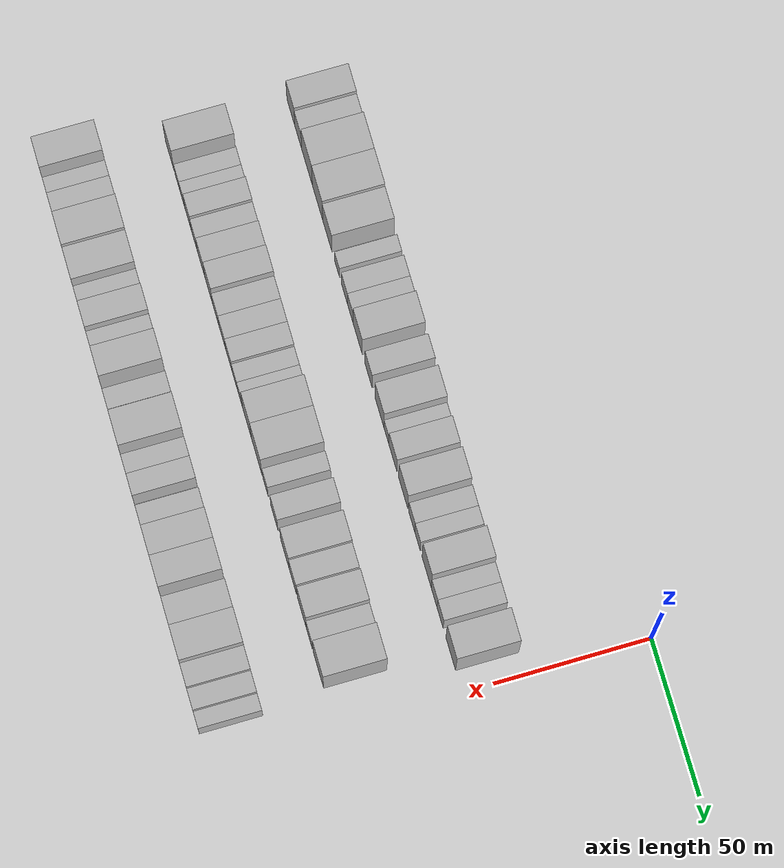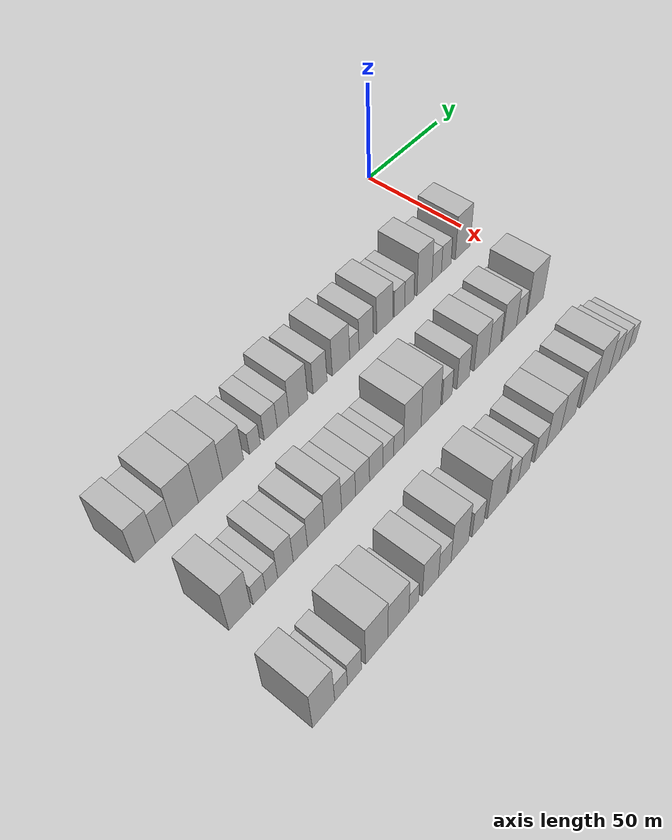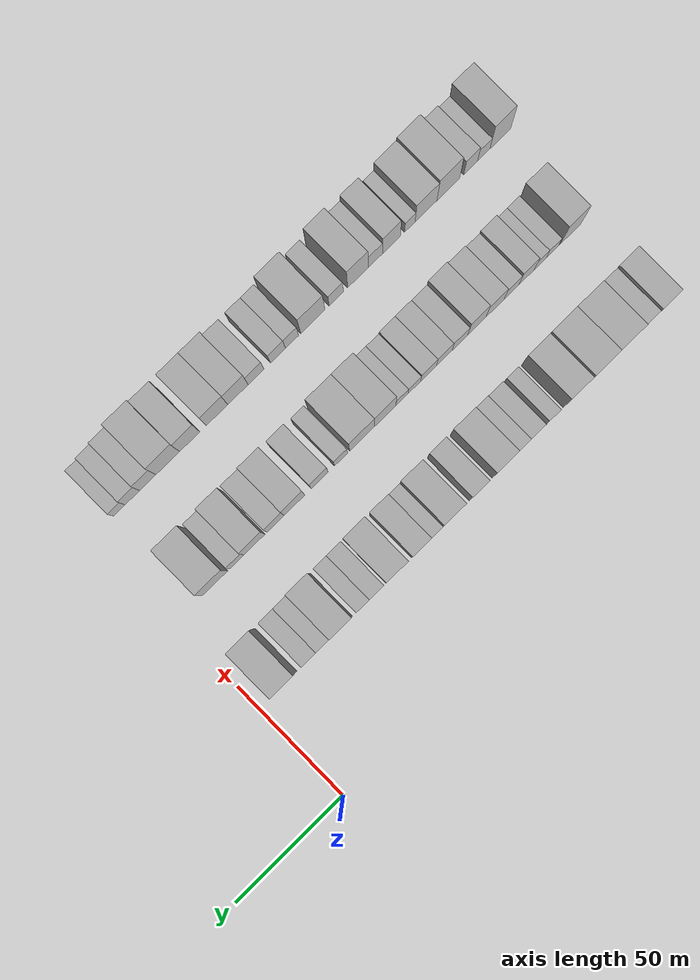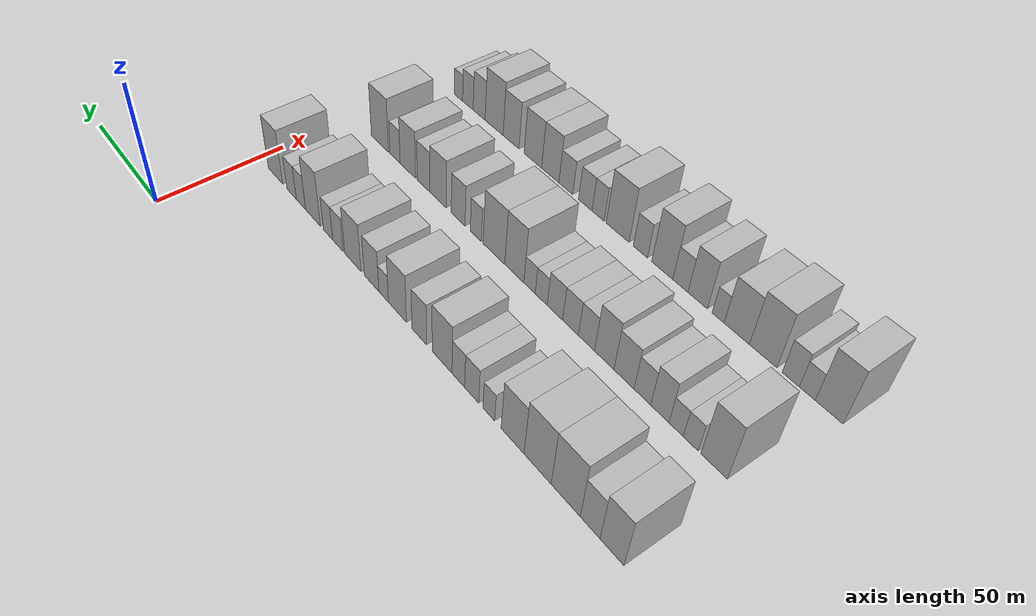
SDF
<sdf version="1.6">
 <world name="default">
  <model name="building_21">
   <static>1</static>
   <pose>50.0000 -189.6851 0 0.000000 0.000000 0.000000</pose>
   <link name="link">
    <pose>0 0 10.50 0 0 0</pose>
    <collision name="collision"><geometry><box><size>20.0000 9.1375 21.0000</size></box></geometry></collision>
    <visual name="visual">
     <cast_shadows>0</cast_shadows>
     <geometry><box><size>20.0000 9.1375 21.0000</size></box></geometry>
     <material>
      <script>
       <uri>model://HANNAS_wall/materials/scripts</uri>
       <uri>model://HANNAS_wall/materials/textures</uri>
       <name>vrc/HANNAS_wall</name>
      </script>
     </material>
    </visual>
   </link>
  </model>
  <model name="building_22">
   <static>1</static>
   <pose>50.0000 -181.2218 0 0.000000 0.000000 0.000000</pose>
   <link name="link">
    <pose>0 0 9.00 0 0 0</pose>
    <collision name="collision"><geometry><box><size>20.0000 7.7893 18.0000</size></box></geometry></collision>
    <visual name="visual">
     <cast_shadows>0</cast_shadows>
     <geometry><box><size>20.0000 7.7893 18.0000</size></box></geometry>
     <material>
      <script>
       <uri>model://HANNAS_wall/materials/scripts</uri>
       <uri>model://HANNAS_wall/materials/textures</uri>
       <name>vrc/HANNAS_wall</name>
      </script>
     </material>
    </visual>
   </link>
  </model>
  <model name="building_23">
   <static>1</static>
   <pose>50.0000 -171.3598 0 0.000000 0.000000 0.000000</pose>
   <link name="link">
    <pose>0 0 12.00 0 0 0</pose>
    <collision name="collision"><geometry><box><size>20.0000 11.9347 24.0000</size></box></geometry></collision>
    <visual name="visual">
     <cast_shadows>0</cast_shadows>
     <geometry><box><size>20.0000 11.9347 24.0000</size></box></geometry>
     <material>
      <script>
       <uri>model://HANNAS_wall/materials/scripts</uri>
       <uri>model://HANNAS_wall/materials/textures</uri>
       <name>vrc/HANNAS_wall</name>
      </script>
     </material>
    </visual>
   </link>
  </model>
  <model name="building_24">
   <static>1</static>
   <pose>50.0000 -159.5305 0 0.000000 0.000000 0.000000</pose>
   <link name="link">
    <pose>0 0 12.00 0 0 0</pose>
    <collision name="collision"><geometry><box><size>20.0000 11.7240 24.0000</size></box></geometry></collision>
    <visual name="visual">
     <cast_shadows>0</cast_shadows>
     <geometry><box><size>20.0000 11.7240 24.0000</size></box></geometry>
     <material>
      <script>
       <uri>model://HANNAS_wall/materials/scripts</uri>
       <uri>model://HANNAS_wall/materials/textures</uri>
       <name>vrc/HANNAS_wall</name>
      </script>
     </material>
    </visual>
   </link>
  </model>
  <model name="building_25">
   <static>1</static>
   <pose>50.0000 -148.4868 0 0.000000 0.000000 0.000000</pose>
   <link name="link">
    <pose>0 0 10.50 0 0 0</pose>
    <collision name="collision"><geometry><box><size>20.0000 10.3634 21.0000</size></box></geometry></collision>
    <visual name="visual">
     <cast_shadows>0</cast_shadows>
     <geometry><box><size>20.0000 10.3634 21.0000</size></box></geometry>
     <material>
      <script>
       <uri>model://HANNAS_wall/materials/scripts</uri>
       <uri>model://HANNAS_wall/materials/textures</uri>
       <name>vrc/HANNAS_wall</name>
      </script>
     </material>
    </visual>
   </link>
  </model>
  <model name="building_26">
   <static>1</static>
   <pose>50.0000 -137.5446 0 0.000000 0.000000 0.000000</pose>
   <link name="link">
    <pose>0 0 6.00 0 0 0</pose>
    <collision name="collision"><geometry><box><size>20.0000 5.5210 12.0000</size></box></geometry></collision>
    <visual name="visual">
     <cast_shadows>0</cast_shadows>
     <geometry><box><size>20.0000 5.5210 12.0000</size></box></geometry>
     <material>
      <script>
       <uri>model://HANNAS_wall/materials/scripts</uri>
       <uri>model://HANNAS_wall/materials/textures</uri>
       <name>vrc/HANNAS_wall</name>
      </script>
     </material>
    </visual>
   </link>
  </model>
  <model name="building_27">
   <static>1</static>
   <pose>50.0000 -129.3545 0 0.000000 0.000000 0.000000</pose>
   <link name="link">
    <pose>0 0 7.50 0 0 0</pose>
    <collision name="collision"><geometry><box><size>20.0000 6.8593 15.0000</size></box></geometry></collision>
    <visual name="visual">
     <cast_shadows>0</cast_shadows>
     <geometry><box><size>20.0000 6.8593 15.0000</size></box></geometry>
     <material>
      <script>
       <uri>model://HANNAS_wall/materials/scripts</uri>
       <uri>model://HANNAS_wall/materials/textures</uri>
       <name>vrc/HANNAS_wall</name>
      </script>
     </material>
    </visual>
   </link>
  </model>
  <model name="building_28">
   <static>1</static>
   <pose>50.0000 -122.7703 0 0.000000 0.000000 0.000000</pose>
   <link name="link">
    <pose>0 0 7.50 0 0 0</pose>
    <collision name="collision"><geometry><box><size>20.0000 6.3090 15.0000</size></box></geometry></collision>
    <visual name="visual">
     <cast_shadows>0</cast_shadows>
     <geometry><box><size>20.0000 6.3090 15.0000</size></box></geometry>
     <material>
      <script>
       <uri>model://HANNAS_wall/materials/scripts</uri>
       <uri>model://HANNAS_wall/materials/textures</uri>
       <name>vrc/HANNAS_wall</name>
      </script>
     </material>
    </visual>
   </link>
  </model>
  <model name="building_29">
   <static>1</static>
   <pose>50.0000 -114.5321 0 0.000000 0.000000 0.000000</pose>
   <link name="link">
    <pose>0 0 10.50 0 0 0</pose>
    <collision name="collision"><geometry><box><size>20.0000 10.1676 21.0000</size></box></geometry></collision>
    <visual name="visual">
     <cast_shadows>0</cast_shadows>
     <geometry><box><size>20.0000 10.1676 21.0000</size></box></geometry>
     <material>
      <script>
       <uri>model://HANNAS_wall/materials/scripts</uri>
       <uri>model://HANNAS_wall/materials/textures</uri>
       <name>vrc/HANNAS_wall</name>
      </script>
     </material>
    </visual>
   </link>
  </model>
  <model name="building_30">
   <static>1</static>
   <pose>50.0000 -102.5261 0 0.000000 0.000000 0.000000</pose>
   <link name="link">
    <pose>0 0 9.00 0 0 0</pose>
    <collision name="collision"><geometry><box><size>20.0000 7.8445 18.0000</size></box></geometry></collision>
    <visual name="visual">
     <cast_shadows>0</cast_shadows>
     <geometry><box><size>20.0000 7.8445 18.0000</size></box></geometry>
     <material>
      <script>
       <uri>model://HANNAS_wall/materials/scripts</uri>
       <uri>model://HANNAS_wall/materials/textures</uri>
       <name>vrc/HANNAS_wall</name>
      </script>
     </material>
    </visual>
   </link>
  </model>
  <model name="building_31">
   <static>1</static>
   <pose>50.0000 -90.5469 0 0.000000 0.000000 0.000000</pose>
   <link name="link">
    <pose>0 0 10.50 0 0 0</pose>
    <collision name="collision"><geometry><box><size>20.0000 10.1137 21.0000</size></box></geometry></collision>
    <visual name="visual">
     <cast_shadows>0</cast_shadows>
     <geometry><box><size>20.0000 10.1137 21.0000</size></box></geometry>
     <material>
      <script>
       <uri>model://HANNAS_wall/materials/scripts</uri>
       <uri>model://HANNAS_wall/materials/textures</uri>
       <name>vrc/HANNAS_wall</name>
      </script>
     </material>
    </visual>
   </link>
  </model>
  <model name="building_32">
   <static>1</static>
   <pose>50.0000 -82.7300 0 0.000000 0.000000 0.000000</pose>
   <link name="link">
    <pose>0 0 6.00 0 0 0</pose>
    <collision name="collision"><geometry><box><size>20.0000 5.5202 12.0000</size></box></geometry></collision>
    <visual name="visual">
     <cast_shadows>0</cast_shadows>
     <geometry><box><size>20.0000 5.5202 12.0000</size></box></geometry>
     <material>
      <script>
       <uri>model://HANNAS_wall/materials/scripts</uri>
       <uri>model://HANNAS_wall/materials/textures</uri>
       <name>vrc/HANNAS_wall</name>
      </script>
     </material>
    </visual>
   </link>
  </model>
  <model name="building_33">
   <static>1</static>
   <pose>50.0000 -75.6578 0 0.000000 0.000000 0.000000</pose>
   <link name="link">
    <pose>0 0 9.00 0 0 0</pose>
    <collision name="collision"><geometry><box><size>20.0000 8.6242 18.0000</size></box></geometry></collision>
    <visual name="visual">
     <cast_shadows>0</cast_shadows>
     <geometry><box><size>20.0000 8.6242 18.0000</size></box></geometry>
     <material>
      <script>
       <uri>model://HANNAS_wall/materials/scripts</uri>
       <uri>model://HANNAS_wall/materials/textures</uri>
       <name>vrc/HANNAS_wall</name>
      </script>
     </material>
    </visual>
   </link>
  </model>
  <model name="building_34">
   <static>1</static>
   <pose>50.0000 -64.3255 0 0.000000 0.000000 0.000000</pose>
   <link name="link">
    <pose>0 0 10.50 0 0 0</pose>
    <collision name="collision"><geometry><box><size>20.0000 10.0405 21.0000</size></box></geometry></collision>
    <visual name="visual">
     <cast_shadows>0</cast_shadows>
     <geometry><box><size>20.0000 10.0405 21.0000</size></box></geometry>
     <material>
      <script>
       <uri>model://HANNAS_wall/materials/scripts</uri>
       <uri>model://HANNAS_wall/materials/textures</uri>
       <name>vrc/HANNAS_wall</name>
      </script>
     </material>
    </visual>
   </link>
  </model>
  <model name="building_35">
   <static>1</static>
   <pose>50.0000 -54.9833 0 0.000000 0.000000 0.000000</pose>
   <link name="link">
    <pose>0 0 7.50 0 0 0</pose>
    <collision name="collision"><geometry><box><size>20.0000 6.6439 15.0000</size></box></geometry></collision>
    <visual name="visual">
     <cast_shadows>0</cast_shadows>
     <geometry><box><size>20.0000 6.6439 15.0000</size></box></geometry>
     <material>
      <script>
       <uri>model://HANNAS_wall/materials/scripts</uri>
       <uri>model://HANNAS_wall/materials/textures</uri>
       <name>vrc/HANNAS_wall</name>
      </script>
     </material>
    </visual>
   </link>
  </model>
  <model name="building_36">
   <static>1</static>
   <pose>50.0000 -48.6580 0 0.000000 0.000000 0.000000</pose>
   <link name="link">
    <pose>0 0 7.50 0 0 0</pose>
    <collision name="collision"><geometry><box><size>20.0000 6.0067 15.0000</size></box></geometry></collision>
    <visual name="visual">
     <cast_shadows>0</cast_shadows>
     <geometry><box><size>20.0000 6.0067 15.0000</size></box></geometry>
     <material>
      <script>
       <uri>model://HANNAS_wall/materials/scripts</uri>
       <uri>model://HANNAS_wall/materials/textures</uri>
       <name>vrc/HANNAS_wall</name>
      </script>
     </material>
    </visual>
   </link>
  </model>
  <model name="building_37">
   <static>1</static>
   <pose>50.0000 -38.6834 0 0.000000 0.000000 0.000000</pose>
   <link name="link">
    <pose>0 0 12.00 0 0 0</pose>
    <collision name="collision"><geometry><box><size>20.0000 9.9426 24.0000</size></box></geometry></collision>
    <visual name="visual">
     <cast_shadows>0</cast_shadows>
     <geometry><box><size>20.0000 9.9426 24.0000</size></box></geometry>
     <material>
      <script>
       <uri>model://HANNAS_wall/materials/scripts</uri>
       <uri>model://HANNAS_wall/materials/textures</uri>
       <name>vrc/HANNAS_wall</name>
      </script>
     </material>
    </visual>
   </link>
  </model>
  <model name="building_38">
   <static>1</static>
   <pose>50.0000 -30.5172 0 0.000000 0.000000 0.000000</pose>
   <link name="link">
    <pose>0 0 7.50 0 0 0</pose>
    <collision name="collision"><geometry><box><size>20.0000 6.3896 15.0000</size></box></geometry></collision>
    <visual name="visual">
     <cast_shadows>0</cast_shadows>
     <geometry><box><size>20.0000 6.3896 15.0000</size></box></geometry>
     <material>
      <script>
       <uri>model://HANNAS_wall/materials/scripts</uri>
       <uri>model://HANNAS_wall/materials/textures</uri>
       <name>vrc/HANNAS_wall</name>
      </script>
     </material>
    </visual>
   </link>
  </model>
  <model name="building_39">
   <static>1</static>
   <pose>50.0000 -24.0216 0 0.000000 0.000000 0.000000</pose>
   <link name="link">
    <pose>0 0 7.50 0 0 0</pose>
    <collision name="collision"><geometry><box><size>20.0000 6.6016 15.0000</size></box></geometry></collision>
    <visual name="visual">
     <cast_shadows>0</cast_shadows>
     <geometry><box><size>20.0000 6.6016 15.0000</size></box></geometry>
     <material>
      <script>
       <uri>model://HANNAS_wall/materials/scripts</uri>
       <uri>model://HANNAS_wall/materials/textures</uri>
       <name>vrc/HANNAS_wall</name>
      </script>
     </material>
    </visual>
   </link>
  </model>
  <model name="building_40">
   <static>1</static>
   <pose>50.0000 -12.4712 0 0.000000 0.000000 0.000000</pose>
   <link name="link">
    <pose>0 0 12.00 0 0 0</pose>
    <collision name="collision"><geometry><box><size>20.0000 10.4992 24.0000</size></box></geometry></collision>
    <visual name="visual">
     <cast_shadows>0</cast_shadows>
     <geometry><box><size>20.0000 10.4992 24.0000</size></box></geometry>
     <material>
      <script>
       <uri>model://HANNAS_wall/materials/scripts</uri>
       <uri>model://HANNAS_wall/materials/textures</uri>
       <name>vrc/HANNAS_wall</name>
      </script>
     </material>
    </visual>
   </link>
  </model>
  <model name="building_102">
   <static>1</static>
   <pose>90.0000 -186.7038 0 0.000000 0.000000 0.000000</pose>
   <link name="link">
    <pose>0 0 12.00 0 0 0</pose>
    <collision name="collision"><geometry><box><size>20.0000 9.9169 24.0000</size></box></geometry></collision>
    <visual name="visual">
     <cast_shadows>0</cast_shadows>
     <geometry><box><size>20.0000 9.9169 24.0000</size></box></geometry>
     <material>
      <script>
       <uri>model://HANNAS_wall/materials/scripts</uri>
       <uri>model://HANNAS_wall/materials/textures</uri>
       <name>vrc/HANNAS_wall</name>
      </script>
     </material>
    </visual>
   </link>
  </model>
  <model name="building_103">
   <static>1</static>
   <pose>90.0000 -177.8192 0 0.000000 0.000000 0.000000</pose>
   <link name="link">
    <pose>0 0 6.00 0 0 0</pose>
    <collision name="collision"><geometry><box><size>20.0000 5.8522 12.0000</size></box></geometry></collision>
    <visual name="visual">
     <cast_shadows>0</cast_shadows>
     <geometry><box><size>20.0000 5.8522 12.0000</size></box></geometry>
     <material>
      <script>
       <uri>model://HANNAS_wall/materials/scripts</uri>
       <uri>model://HANNAS_wall/materials/textures</uri>
       <name>vrc/HANNAS_wall</name>
      </script>
     </material>
    </visual>
   </link>
  </model>
  <model name="building_104">
   <static>1</static>
   <pose>90.0000 -172.0731 0 0.000000 0.000000 0.000000</pose>
   <link name="link">
    <pose>0 0 6.00 0 0 0</pose>
    <collision name="collision"><geometry><box><size>20.0000 5.6401 12.0000</size></box></geometry></collision>
    <visual name="visual">
     <cast_shadows>0</cast_shadows>
     <geometry><box><size>20.0000 5.6401 12.0000</size></box></geometry>
     <material>
      <script>
       <uri>model://HANNAS_wall/materials/scripts</uri>
       <uri>model://HANNAS_wall/materials/textures</uri>
       <name>vrc/HANNAS_wall</name>
      </script>
     </material>
    </visual>
   </link>
  </model>
  <model name="building_105">
   <static>1</static>
   <pose>90.0000 -165.5355 0 0.000000 0.000000 0.000000</pose>
   <link name="link">
    <pose>0 0 9.00 0 0 0</pose>
    <collision name="collision"><geometry><box><size>20.0000 7.4351 18.0000</size></box></geometry></collision>
    <visual name="visual">
     <cast_shadows>0</cast_shadows>
     <geometry><box><size>20.0000 7.4351 18.0000</size></box></geometry>
     <material>
      <script>
       <uri>model://HANNAS_wall/materials/scripts</uri>
       <uri>model://HANNAS_wall/materials/textures</uri>
       <name>vrc/HANNAS_wall</name>
      </script>
     </material>
    </visual>
   </link>
  </model>
  <model name="building_106">
   <static>1</static>
   <pose>90.0000 -158.3221 0 0.000000 0.000000 0.000000</pose>
   <link name="link">
    <pose>0 0 7.50 0 0 0</pose>
    <collision name="collision"><geometry><box><size>20.0000 6.9916 15.0000</size></box></geometry></collision>
    <visual name="visual">
     <cast_shadows>0</cast_shadows>
     <geometry><box><size>20.0000 6.9916 15.0000</size></box></geometry>
     <material>
      <script>
       <uri>model://HANNAS_wall/materials/scripts</uri>
       <uri>model://HANNAS_wall/materials/textures</uri>
       <name>vrc/HANNAS_wall</name>
      </script>
     </material>
    </visual>
   </link>
  </model>
  <model name="building_107">
   <static>1</static>
   <pose>90.0000 -150.5027 0 0.000000 0.000000 0.000000</pose>
   <link name="link">
    <pose>0 0 9.00 0 0 0</pose>
    <collision name="collision"><geometry><box><size>20.0000 8.6473 18.0000</size></box></geometry></collision>
    <visual name="visual">
     <cast_shadows>0</cast_shadows>
     <geometry><box><size>20.0000 8.6473 18.0000</size></box></geometry>
     <material>
      <script>
       <uri>model://HANNAS_wall/materials/scripts</uri>
       <uri>model://HANNAS_wall/materials/textures</uri>
       <name>vrc/HANNAS_wall</name>
      </script>
     </material>
    </visual>
   </link>
  </model>
  <model name="building_108">
   <static>1</static>
   <pose>90.0000 -141.8351 0 0.000000 0.000000 0.000000</pose>
   <link name="link">
    <pose>0 0 10.50 0 0 0</pose>
    <collision name="collision"><geometry><box><size>20.0000 8.6880 21.0000</size></box></geometry></collision>
    <visual name="visual">
     <cast_shadows>0</cast_shadows>
     <geometry><box><size>20.0000 8.6880 21.0000</size></box></geometry>
     <material>
      <script>
       <uri>model://HANNAS_wall/materials/scripts</uri>
       <uri>model://HANNAS_wall/materials/textures</uri>
       <name>vrc/HANNAS_wall</name>
      </script>
     </material>
    </visual>
   </link>
  </model>
  <model name="building_109">
   <static>1</static>
   <pose>90.0000 -133.8086 0 0.000000 0.000000 0.000000</pose>
   <link name="link">
    <pose>0 0 7.50 0 0 0</pose>
    <collision name="collision"><geometry><box><size>20.0000 7.3650 15.0000</size></box></geometry></collision>
    <visual name="visual">
     <cast_shadows>0</cast_shadows>
     <geometry><box><size>20.0000 7.3650 15.0000</size></box></geometry>
     <material>
      <script>
       <uri>model://HANNAS_wall/materials/scripts</uri>
       <uri>model://HANNAS_wall/materials/textures</uri>
       <name>vrc/HANNAS_wall</name>
      </script>
     </material>
    </visual>
   </link>
  </model>
  <model name="building_110">
   <static>1</static>
   <pose>90.0000 -126.3890 0 0.000000 0.000000 0.000000</pose>
   <link name="link">
    <pose>0 0 7.50 0 0 0</pose>
    <collision name="collision"><geometry><box><size>20.0000 7.4741 15.0000</size></box></geometry></collision>
    <visual name="visual">
     <cast_shadows>0</cast_shadows>
     <geometry><box><size>20.0000 7.4741 15.0000</size></box></geometry>
     <material>
      <script>
       <uri>model://HANNAS_wall/materials/scripts</uri>
       <uri>model://HANNAS_wall/materials/textures</uri>
       <name>vrc/HANNAS_wall</name>
      </script>
     </material>
    </visual>
   </link>
  </model>
  <model name="building_111">
   <static>1</static>
   <pose>90.0000 -118.9176 0 0.000000 0.000000 0.000000</pose>
   <link name="link">
    <pose>0 0 7.50 0 0 0</pose>
    <collision name="collision"><geometry><box><size>20.0000 7.4687 15.0000</size></box></geometry></collision>
    <visual name="visual">
     <cast_shadows>0</cast_shadows>
     <geometry><box><size>20.0000 7.4687 15.0000</size></box></geometry>
     <material>
      <script>
       <uri>model://HANNAS_wall/materials/scripts</uri>
       <uri>model://HANNAS_wall/materials/textures</uri>
       <name>vrc/HANNAS_wall</name>
      </script>
     </material>
    </visual>
   </link>
  </model>
  <model name="building_112">
   <static>1</static>
   <pose>90.0000 -112.2161 0 0.000000 0.000000 0.000000</pose>
   <link name="link">
    <pose>0 0 6.00 0 0 0</pose>
    <collision name="collision"><geometry><box><size>20.0000 5.9344 12.0000</size></box></geometry></collision>
    <visual name="visual">
     <cast_shadows>0</cast_shadows>
     <geometry><box><size>20.0000 5.9344 12.0000</size></box></geometry>
     <material>
      <script>
       <uri>model://HANNAS_wall/materials/scripts</uri>
       <uri>model://HANNAS_wall/materials/textures</uri>
       <name>vrc/HANNAS_wall</name>
      </script>
     </material>
    </visual>
   </link>
  </model>
  <model name="building_113">
   <static>1</static>
   <pose>90.0000 -106.3579 0 0.000000 0.000000 0.000000</pose>
   <link name="link">
    <pose>0 0 6.00 0 0 0</pose>
    <collision name="collision"><geometry><box><size>20.0000 5.7819 12.0000</size></box></geometry></collision>
    <visual name="visual">
     <cast_shadows>0</cast_shadows>
     <geometry><box><size>20.0000 5.7819 12.0000</size></box></geometry>
     <material>
      <script>
       <uri>model://HANNAS_wall/materials/scripts</uri>
       <uri>model://HANNAS_wall/materials/textures</uri>
       <name>vrc/HANNAS_wall</name>
      </script>
     </material>
    </visual>
   </link>
  </model>
  <model name="building_114">
   <static>1</static>
   <pose>90.0000 -98.4893 0 0.000000 0.000000 0.000000</pose>
   <link name="link">
    <pose>0 0 12.00 0 0 0</pose>
    <collision name="collision"><geometry><box><size>20.0000 9.9552 24.0000</size></box></geometry></collision>
    <visual name="visual">
     <cast_shadows>0</cast_shadows>
     <geometry><box><size>20.0000 9.9552 24.0000</size></box></geometry>
     <material>
      <script>
       <uri>model://HANNAS_wall/materials/scripts</uri>
       <uri>model://HANNAS_wall/materials/textures</uri>
       <name>vrc/HANNAS_wall</name>
      </script>
     </material>
    </visual>
   </link>
  </model>
  <model name="building_115">
   <static>1</static>
   <pose>90.0000 -87.6347 0 0.000000 0.000000 0.000000</pose>
   <link name="link">
    <pose>0 0 12.00 0 0 0</pose>
    <collision name="collision"><geometry><box><size>20.0000 11.7541 24.0000</size></box></geometry></collision>
    <visual name="visual">
     <cast_shadows>0</cast_shadows>
     <geometry><box><size>20.0000 11.7541 24.0000</size></box></geometry>
     <material>
      <script>
       <uri>model://HANNAS_wall/materials/scripts</uri>
       <uri>model://HANNAS_wall/materials/textures</uri>
       <name>vrc/HANNAS_wall</name>
      </script>
     </material>
    </visual>
   </link>
  </model>
  <model name="building_116">
   <static>1</static>
   <pose>90.0000 -77.7081 0 0.000000 0.000000 0.000000</pose>
   <link name="link">
    <pose>0 0 7.50 0 0 0</pose>
    <collision name="collision"><geometry><box><size>20.0000 6.0991 15.0000</size></box></geometry></collision>
    <visual name="visual">
     <cast_shadows>0</cast_shadows>
     <geometry><box><size>20.0000 6.0991 15.0000</size></box></geometry>
     <material>
      <script>
       <uri>model://HANNAS_wall/materials/scripts</uri>
       <uri>model://HANNAS_wall/materials/textures</uri>
       <name>vrc/HANNAS_wall</name>
      </script>
     </material>
    </visual>
   </link>
  </model>
  <model name="building_117">
   <static>1</static>
   <pose>90.0000 -67.6753 0 0.000000 0.000000 0.000000</pose>
   <link name="link">
    <pose>0 0 9.00 0 0 0</pose>
    <collision name="collision"><geometry><box><size>20.0000 7.9665 18.0000</size></box></geometry></collision>
    <visual name="visual">
     <cast_shadows>0</cast_shadows>
     <geometry><box><size>20.0000 7.9665 18.0000</size></box></geometry>
     <material>
      <script>
       <uri>model://HANNAS_wall/materials/scripts</uri>
       <uri>model://HANNAS_wall/materials/textures</uri>
       <name>vrc/HANNAS_wall</name>
      </script>
     </material>
    </visual>
   </link>
  </model>
  <model name="building_118">
   <static>1</static>
   <pose>90.0000 -55.8404 0 0.000000 0.000000 0.000000</pose>
   <link name="link">
    <pose>0 0 10.50 0 0 0</pose>
    <collision name="collision"><geometry><box><size>20.0000 9.7034 21.0000</size></box></geometry></collision>
    <visual name="visual">
     <cast_shadows>0</cast_shadows>
     <geometry><box><size>20.0000 9.7034 21.0000</size></box></geometry>
     <material>
      <script>
       <uri>model://HANNAS_wall/materials/scripts</uri>
       <uri>model://HANNAS_wall/materials/textures</uri>
       <name>vrc/HANNAS_wall</name>
      </script>
     </material>
    </visual>
   </link>
  </model>
  <model name="building_119">
   <static>1</static>
   <pose>90.0000 -47.0130 0 0.000000 0.000000 0.000000</pose>
   <link name="link">
    <pose>0 0 9.00 0 0 0</pose>
    <collision name="collision"><geometry><box><size>20.0000 7.9514 18.0000</size></box></geometry></collision>
    <visual name="visual">
     <cast_shadows>0</cast_shadows>
     <geometry><box><size>20.0000 7.9514 18.0000</size></box></geometry>
     <material>
      <script>
       <uri>model://HANNAS_wall/materials/scripts</uri>
       <uri>model://HANNAS_wall/materials/textures</uri>
       <name>vrc/HANNAS_wall</name>
      </script>
     </material>
    </visual>
   </link>
  </model>
  <model name="building_120">
   <static>1</static>
   <pose>90.0000 -37.1246 0 0.000000 0.000000 0.000000</pose>
   <link name="link">
    <pose>0 0 10.50 0 0 0</pose>
    <collision name="collision"><geometry><box><size>20.0000 9.8254 21.0000</size></box></geometry></collision>
    <visual name="visual">
     <cast_shadows>0</cast_shadows>
     <geometry><box><size>20.0000 9.8254 21.0000</size></box></geometry>
     <material>
      <script>
       <uri>model://HANNAS_wall/materials/scripts</uri>
       <uri>model://HANNAS_wall/materials/textures</uri>
       <name>vrc/HANNAS_wall</name>
      </script>
     </material>
    </visual>
   </link>
  </model>
  <model name="building_121">
   <static>1</static>
   <pose>90.0000 -28.9061 0 0.000000 0.000000 0.000000</pose>
   <link name="link">
    <pose>0 0 7.50 0 0 0</pose>
    <collision name="collision"><geometry><box><size>20.0000 6.6118 15.0000</size></box></geometry></collision>
    <visual name="visual">
     <cast_shadows>0</cast_shadows>
     <geometry><box><size>20.0000 6.6118 15.0000</size></box></geometry>
     <material>
      <script>
       <uri>model://HANNAS_wall/materials/scripts</uri>
       <uri>model://HANNAS_wall/materials/textures</uri>
       <name>vrc/HANNAS_wall</name>
      </script>
     </material>
    </visual>
   </link>
  </model>
  <model name="building_122">
   <static>1</static>
   <pose>90.0000 -18.8615 0 0.000000 0.000000 0.000000</pose>
   <link name="link">
    <pose>0 0 12.00 0 0 0</pose>
    <collision name="collision"><geometry><box><size>20.0000 11.4774 24.0000</size></box></geometry></collision>
    <visual name="visual">
     <cast_shadows>0</cast_shadows>
     <geometry><box><size>20.0000 11.4774 24.0000</size></box></geometry>
     <material>
      <script>
       <uri>model://HANNAS_wall/materials/scripts</uri>
       <uri>model://HANNAS_wall/materials/textures</uri>
       <name>vrc/HANNAS_wall</name>
      </script>
     </material>
    </visual>
   </link>
  </model>
  <model name="building_188">
   <static>1</static>
   <pose>130.0000 -192.9447 0 0.000000 0.000000 0.000000</pose>
   <link name="link">
    <pose>0 0 12.00 0 0 0</pose>
    <collision name="collision"><geometry><box><size>20.0000 9.9936 24.0000</size></box></geometry></collision>
    <visual name="visual">
     <cast_shadows>0</cast_shadows>
     <geometry><box><size>20.0000 9.9936 24.0000</size></box></geometry>
     <material>
      <script>
       <uri>model://HANNAS_wall/materials/scripts</uri>
       <uri>model://HANNAS_wall/materials/textures</uri>
       <name>vrc/HANNAS_wall</name>
      </script>
     </material>
    </visual>
   </link>
  </model>
  <model name="building_189">
   <static>1</static>
   <pose>130.0000 -185.0091 0 0.000000 0.000000 0.000000</pose>
   <link name="link">
    <pose>0 0 6.00 0 0 0</pose>
    <collision name="collision"><geometry><box><size>20.0000 5.8776 12.0000</size></box></geometry></collision>
    <visual name="visual">
     <cast_shadows>0</cast_shadows>
     <geometry><box><size>20.0000 5.8776 12.0000</size></box></geometry>
     <material>
      <script>
       <uri>model://HANNAS_wall/materials/scripts</uri>
       <uri>model://HANNAS_wall/materials/textures</uri>
       <name>vrc/HANNAS_wall</name>
      </script>
     </material>
    </visual>
   </link>
  </model>
  <model name="building_190">
   <static>1</static>
   <pose>130.0000 -178.7936 0 0.000000 0.000000 0.000000</pose>
   <link name="link">
    <pose>0 0 7.50 0 0 0</pose>
    <collision name="collision"><geometry><box><size>20.0000 6.5535 15.0000</size></box></geometry></collision>
    <visual name="visual">
     <cast_shadows>0</cast_shadows>
     <geometry><box><size>20.0000 6.5535 15.0000</size></box></geometry>
     <material>
      <script>
       <uri>model://HANNAS_wall/materials/scripts</uri>
       <uri>model://HANNAS_wall/materials/textures</uri>
       <name>vrc/HANNAS_wall</name>
      </script>
     </material>
    </visual>
   </link>
  </model>
  <model name="building_191">
   <static>1</static>
   <pose>130.0000 -168.0900 0 0.000000 0.000000 0.000000</pose>
   <link name="link">
    <pose>0 0 12.00 0 0 0</pose>
    <collision name="collision"><geometry><box><size>20.0000 10.8536 24.0000</size></box></geometry></collision>
    <visual name="visual">
     <cast_shadows>0</cast_shadows>
     <geometry><box><size>20.0000 10.8536 24.0000</size></box></geometry>
     <material>
      <script>
       <uri>model://HANNAS_wall/materials/scripts</uri>
       <uri>model://HANNAS_wall/materials/textures</uri>
       <name>vrc/HANNAS_wall</name>
      </script>
     </material>
    </visual>
   </link>
  </model>
  <model name="building_192">
   <static>1</static>
   <pose>130.0000 -157.4392 0 0.000000 0.000000 0.000000</pose>
   <link name="link">
    <pose>0 0 10.50 0 0 0</pose>
    <collision name="collision"><geometry><box><size>20.0000 10.4482 21.0000</size></box></geometry></collision>
    <visual name="visual">
     <cast_shadows>0</cast_shadows>
     <geometry><box><size>20.0000 10.4482 21.0000</size></box></geometry>
     <material>
      <script>
       <uri>model://HANNAS_wall/materials/scripts</uri>
       <uri>model://HANNAS_wall/materials/textures</uri>
       <name>vrc/HANNAS_wall</name>
      </script>
     </material>
    </visual>
   </link>
  </model>
  <model name="building_193">
   <static>1</static>
   <pose>130.0000 -149.7031 0 0.000000 0.000000 0.000000</pose>
   <link name="link">
    <pose>0 0 6.00 0 0 0</pose>
    <collision name="collision"><geometry><box><size>20.0000 5.0240 12.0000</size></box></geometry></collision>
    <visual name="visual">
     <cast_shadows>0</cast_shadows>
     <geometry><box><size>20.0000 5.0240 12.0000</size></box></geometry>
     <material>
      <script>
       <uri>model://HANNAS_wall/materials/scripts</uri>
       <uri>model://HANNAS_wall/materials/textures</uri>
       <name>vrc/HANNAS_wall</name>
      </script>
     </material>
    </visual>
   </link>
  </model>
  <model name="building_194">
   <static>1</static>
   <pose>130.0000 -140.9394 0 0.000000 0.000000 0.000000</pose>
   <link name="link">
    <pose>0 0 10.50 0 0 0</pose>
    <collision name="collision"><geometry><box><size>20.0000 8.5032 21.0000</size></box></geometry></collision>
    <visual name="visual">
     <cast_shadows>0</cast_shadows>
     <geometry><box><size>20.0000 8.5032 21.0000</size></box></geometry>
     <material>
      <script>
       <uri>model://HANNAS_wall/materials/scripts</uri>
       <uri>model://HANNAS_wall/materials/textures</uri>
       <name>vrc/HANNAS_wall</name>
      </script>
     </material>
    </visual>
   </link>
  </model>
  <model name="building_195">
   <static>1</static>
   <pose>130.0000 -133.2889 0 0.000000 0.000000 0.000000</pose>
   <link name="link">
    <pose>0 0 7.50 0 0 0</pose>
    <collision name="collision"><geometry><box><size>20.0000 6.7979 15.0000</size></box></geometry></collision>
    <visual name="visual">
     <cast_shadows>0</cast_shadows>
     <geometry><box><size>20.0000 6.7979 15.0000</size></box></geometry>
     <material>
      <script>
       <uri>model://HANNAS_wall/materials/scripts</uri>
       <uri>model://HANNAS_wall/materials/textures</uri>
       <name>vrc/HANNAS_wall</name>
      </script>
     </material>
    </visual>
   </link>
  </model>
  <model name="building_196">
   <static>1</static>
   <pose>130.0000 -125.0200 0 0.000000 0.000000 0.000000</pose>
   <link name="link">
    <pose>0 0 12.00 0 0 0</pose>
    <collision name="collision"><geometry><box><size>20.0000 9.7400 24.0000</size></box></geometry></collision>
    <visual name="visual">
     <cast_shadows>0</cast_shadows>
     <geometry><box><size>20.0000 9.7400 24.0000</size></box></geometry>
     <material>
      <script>
       <uri>model://HANNAS_wall/materials/scripts</uri>
       <uri>model://HANNAS_wall/materials/textures</uri>
       <name>vrc/HANNAS_wall</name>
      </script>
     </material>
    </visual>
   </link>
  </model>
  <model name="building_197">
   <static>1</static>
   <pose>130.0000 -114.7646 0 0.000000 0.000000 0.000000</pose>
   <link name="link">
    <pose>0 0 7.50 0 0 0</pose>
    <collision name="collision"><geometry><box><size>20.0000 6.7708 15.0000</size></box></geometry></collision>
    <visual name="visual">
     <cast_shadows>0</cast_shadows>
     <geometry><box><size>20.0000 6.7708 15.0000</size></box></geometry>
     <material>
      <script>
       <uri>model://HANNAS_wall/materials/scripts</uri>
       <uri>model://HANNAS_wall/materials/textures</uri>
       <name>vrc/HANNAS_wall</name>
      </script>
     </material>
    </visual>
   </link>
  </model>
  <model name="building_198">
   <static>1</static>
   <pose>130.0000 -103.6695 0 0.000000 0.000000 0.000000</pose>
   <link name="link">
    <pose>0 0 12.00 0 0 0</pose>
    <collision name="collision"><geometry><box><size>20.0000 11.4193 24.0000</size></box></geometry></collision>
    <visual name="visual">
     <cast_shadows>0</cast_shadows>
     <geometry><box><size>20.0000 11.4193 24.0000</size></box></geometry>
     <material>
      <script>
       <uri>model://HANNAS_wall/materials/scripts</uri>
       <uri>model://HANNAS_wall/materials/textures</uri>
       <name>vrc/HANNAS_wall</name>
      </script>
     </material>
    </visual>
   </link>
  </model>
  <model name="building_199">
   <static>1</static>
   <pose>130.0000 -93.8549 0 0.000000 0.000000 0.000000</pose>
   <link name="link">
    <pose>0 0 7.50 0 0 0</pose>
    <collision name="collision"><geometry><box><size>20.0000 6.2098 15.0000</size></box></geometry></collision>
    <visual name="visual">
     <cast_shadows>0</cast_shadows>
     <geometry><box><size>20.0000 6.2098 15.0000</size></box></geometry>
     <material>
      <script>
       <uri>model://HANNAS_wall/materials/scripts</uri>
       <uri>model://HANNAS_wall/materials/textures</uri>
       <name>vrc/HANNAS_wall</name>
      </script>
     </material>
    </visual>
   </link>
  </model>
  <model name="building_200">
   <static>1</static>
   <pose>130.0000 -87.2107 0 0.000000 0.000000 0.000000</pose>
   <link name="link">
    <pose>0 0 7.50 0 0 0</pose>
    <collision name="collision"><geometry><box><size>20.0000 7.0786 15.0000</size></box></geometry></collision>
    <visual name="visual">
     <cast_shadows>0</cast_shadows>
     <geometry><box><size>20.0000 7.0786 15.0000</size></box></geometry>
     <material>
      <script>
       <uri>model://HANNAS_wall/materials/scripts</uri>
       <uri>model://HANNAS_wall/materials/textures</uri>
       <name>vrc/HANNAS_wall</name>
      </script>
     </material>
    </visual>
   </link>
  </model>
  <model name="building_201">
   <static>1</static>
   <pose>130.0000 -76.9277 0 0.000000 0.000000 0.000000</pose>
   <link name="link">
    <pose>0 0 7.50 0 0 0</pose>
    <collision name="collision"><geometry><box><size>20.0000 7.4874 15.0000</size></box></geometry></collision>
    <visual name="visual">
     <cast_shadows>0</cast_shadows>
     <geometry><box><size>20.0000 7.4874 15.0000</size></box></geometry>
     <material>
      <script>
       <uri>model://HANNAS_wall/materials/scripts</uri>
       <uri>model://HANNAS_wall/materials/textures</uri>
       <name>vrc/HANNAS_wall</name>
      </script>
     </material>
    </visual>
   </link>
  </model>
  <model name="building_202">
   <static>1</static>
   <pose>130.0000 -68.3681 0 0.000000 0.000000 0.000000</pose>
   <link name="link">
    <pose>0 0 10.50 0 0 0</pose>
    <collision name="collision"><geometry><box><size>20.0000 9.6318 21.0000</size></box></geometry></collision>
    <visual name="visual">
     <cast_shadows>0</cast_shadows>
     <geometry><box><size>20.0000 9.6318 21.0000</size></box></geometry>
     <material>
      <script>
       <uri>model://HANNAS_wall/materials/scripts</uri>
       <uri>model://HANNAS_wall/materials/textures</uri>
       <name>vrc/HANNAS_wall</name>
      </script>
     </material>
    </visual>
   </link>
  </model>
  <model name="building_203">
   <static>1</static>
   <pose>130.0000 -58.5301 0 0.000000 0.000000 0.000000</pose>
   <link name="link">
    <pose>0 0 10.50 0 0 0</pose>
    <collision name="collision"><geometry><box><size>20.0000 10.0442 21.0000</size></box></geometry></collision>
    <visual name="visual">
     <cast_shadows>0</cast_shadows>
     <geometry><box><size>20.0000 10.0442 21.0000</size></box></geometry>
     <material>
      <script>
       <uri>model://HANNAS_wall/materials/scripts</uri>
       <uri>model://HANNAS_wall/materials/textures</uri>
       <name>vrc/HANNAS_wall</name>
      </script>
     </material>
    </visual>
   </link>
  </model>
  <model name="building_204">
   <static>1</static>
   <pose>130.0000 -45.7947 0 0.000000 0.000000 0.000000</pose>
   <link name="link">
    <pose>0 0 10.50 0 0 0</pose>
    <collision name="collision"><geometry><box><size>20.0000 9.4266 21.0000</size></box></geometry></collision>
    <visual name="visual">
     <cast_shadows>0</cast_shadows>
     <geometry><box><size>20.0000 9.4266 21.0000</size></box></geometry>
     <material>
      <script>
       <uri>model://HANNAS_wall/materials/scripts</uri>
       <uri>model://HANNAS_wall/materials/textures</uri>
       <name>vrc/HANNAS_wall</name>
      </script>
     </material>
    </visual>
   </link>
  </model>
  <model name="building_205">
   <static>1</static>
   <pose>130.0000 -35.5162 0 0.000000 0.000000 0.000000</pose>
   <link name="link">
    <pose>0 0 12.00 0 0 0</pose>
    <collision name="collision"><geometry><box><size>20.0000 11.1304 24.0000</size></box></geometry></collision>
    <visual name="visual">
     <cast_shadows>0</cast_shadows>
     <geometry><box><size>20.0000 11.1304 24.0000</size></box></geometry>
     <material>
      <script>
       <uri>model://HANNAS_wall/materials/scripts</uri>
       <uri>model://HANNAS_wall/materials/textures</uri>
       <name>vrc/HANNAS_wall</name>
      </script>
     </material>
    </visual>
   </link>
  </model>
  <model name="building_206">
   <static>1</static>
   <pose>130.0000 -26.1733 0 0.000000 0.000000 0.000000</pose>
   <link name="link">
    <pose>0 0 9.00 0 0 0</pose>
    <collision name="collision"><geometry><box><size>20.0000 7.5553 18.0000</size></box></geometry></collision>
    <visual name="visual">
     <cast_shadows>0</cast_shadows>
     <geometry><box><size>20.0000 7.5553 18.0000</size></box></geometry>
     <material>
      <script>
       <uri>model://HANNAS_wall/materials/scripts</uri>
       <uri>model://HANNAS_wall/materials/textures</uri>
       <name>vrc/HANNAS_wall</name>
      </script>
     </material>
    </visual>
   </link>
  </model>
  <model name="building_207">
   <static>1</static>
   <pose>130.0000 -19.0078 0 0.000000 0.000000 0.000000</pose>
   <link name="link">
    <pose>0 0 7.50 0 0 0</pose>
    <collision name="collision"><geometry><box><size>20.0000 6.7757 15.0000</size></box></geometry></collision>
    <visual name="visual">
     <cast_shadows>0</cast_shadows>
     <geometry><box><size>20.0000 6.7757 15.0000</size></box></geometry>
     <material>
      <script>
       <uri>model://HANNAS_wall/materials/scripts</uri>
       <uri>model://HANNAS_wall/materials/textures</uri>
       <name>vrc/HANNAS_wall</name>
      </script>
     </material>
    </visual>
   </link>
  </model>
  <model name="building_208">
   <static>1</static>
   <pose>130.0000 -12.8977 0 0.000000 0.000000 0.000000</pose>
   <link name="link">
    <pose>0 0 6.00 0 0 0</pose>
    <collision name="collision"><geometry><box><size>20.0000 5.4445 12.0000</size></box></geometry></collision>
    <visual name="visual">
     <cast_shadows>0</cast_shadows>
     <geometry><box><size>20.0000 5.4445 12.0000</size></box></geometry>
     <material>
      <script>
       <uri>model://HANNAS_wall/materials/scripts</uri>
       <uri>model://HANNAS_wall/materials/textures</uri>
       <name>vrc/HANNAS_wall</name>
      </script>
     </material>
    </visual>
   </link>
  </model>
 </world>
</sdf>
